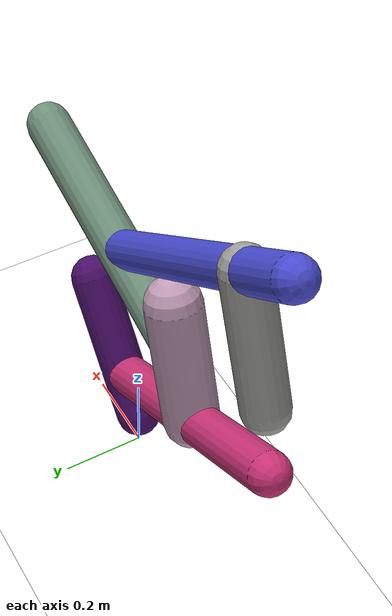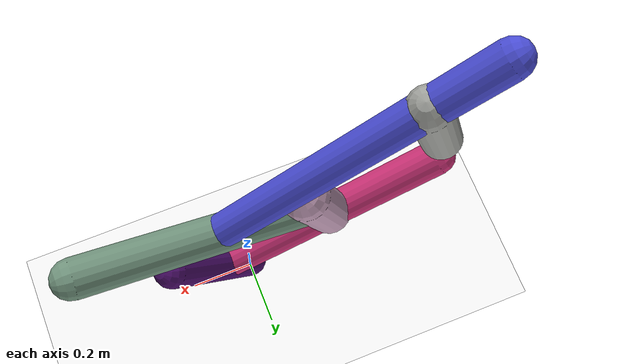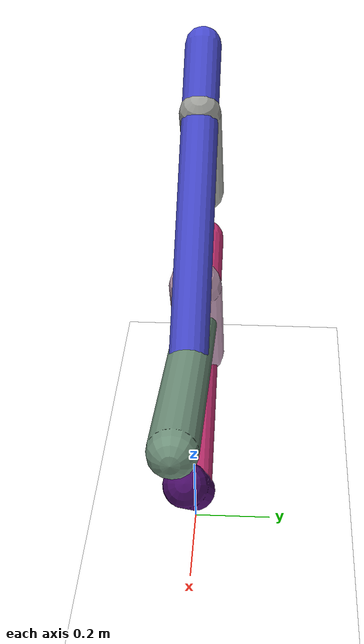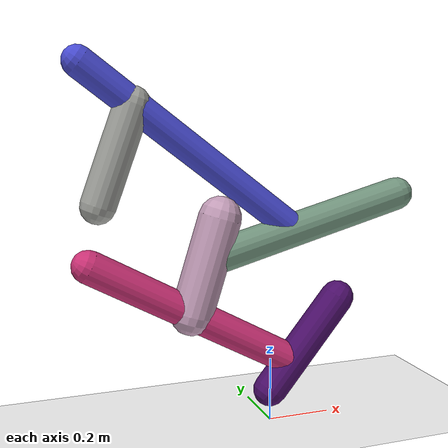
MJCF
<mujoco model="morphology">
  <option timestep="0.01"/>
  <default>
    <default class="/"/>
    <default class="0/"/>
    <default class="0/1/"/>
    <default class="0/1/2/"/>
    <default class="0/1/2/3/"/>
    <default class="0/1/2/3/4/"/>
    <default class="0/1/2/3/4/5/"/>
  </default>
  <asset>
    <texture name="texplane" type="2d" builtin="checker" rgb1="0.10000000000000001 0.20000000000000001 0.29999999999999999" rgb2="0.20000000000000001 0.29999999999999999 0.40000000000000002" width="300" height="300"/>
    <material name="MatPlane" class="/" texture="texplane" texrepeat="20 20" specular="1" shininess="1" reflectance="0.5"/>
  </asset>
  <worldbody>
    <light name="//unnamed_light_0" class="/" directional="true" pos="0 0 1.5" dir="0 0 -1.3" cutoff="100" exponent="1" diffuse="1 1 1" specular="0.10000000000000001 0.10000000000000001 0.10000000000000001"/>
    <geom name="ground" class="/" type="plane" size="15 15 0.5" material="MatPlane" rgba="1 1 1 1"/>
    <site name="body" class="/" size="9.9999999999999995e-07 9.9999999999999995e-07 9.9999999999999995e-07" pos="0 0 0.10000000000000001"/>
    <body pos="0 0 0.10000000000000001" name="0/">
      <joint name="0/rootx/" class="/" type="slide" axis="1 0 0" limited="false" stiffness="0" armature="0" damping="0"/>
      <joint name="0/rootz/" class="/" type="slide" axis="0 0 1" limited="false" stiffness="0" armature="0" damping="0"/>
      <joint name="0/rooty/" class="/" type="hinge" axis="0 1 0" limited="false" stiffness="0" armature="0" damping="0"/>
      <geom name="0/geom" class="0/" type="capsule" contype="1" conaffinity="1" condim="3" size="0.053338733524372517" rgba="0.29982447582596472 0.058119135047237647 0.42059282790765296 1" friction="0.59999999999999998 0.10000000000000001 0.10000000000000001" fromto="0 0 0 0.22907387022674119 0 0.28015321834631912"/>
      <site name="0/end0" class="0/" size="0.0050000000000000001" pos="0.22907387022674119 0 0.28015321834631912"/>
      <site name="0/attach1" class="0/" size="9.9999999999999995e-07 9.9999999999999995e-07 9.9999999999999995e-07" pos="0.072550829113842932 0 0.08872835758097837"/>
      <body pos="0.072550829113842932 0 0.08872835758097837" name="0/1/">
        <joint name="0/1/joint/" class="0/" type="hinge" axis="0 1 0" limited="true" range="-56.068738666627077 56.068738666627077"/>
        <geom name="0/1/geom" class="0/1/" type="capsule" contype="1" conaffinity="1" condim="3" size="0.049179513887112877" rgba="0.80705470807550506 0.1973522548787694 0.46851106761131489 1" friction="0.59999999999999998 0.10000000000000001 0.10000000000000001" fromto="0 0 0 -0.62816182785822106 0 0.34830786066421116"/>
        <site name="0/1/end1" class="0/1/" size="0.0050000000000000001" pos="-0.62816182785822106 0 0.34830786066421116"/>
        <site name="0/1/attach2" class="0/1/" size="9.9999999999999995e-07 9.9999999999999995e-07 9.9999999999999995e-07" pos="-0.32624844633030242 0 0.18090067455034572"/>
        <body pos="-0.32624844633030242 0 0.18090067455034572" name="0/1/2/">
          <joint name="0/1/2/joint/" class="0/1/" type="hinge" axis="0 1 0" limited="true" range="-43.494065128463703 43.494065128463703"/>
          <geom name="0/1/2/geom" class="0/1/2/" type="capsule" contype="1" conaffinity="1" condim="3" size="0.064986739377380573" rgba="0.76904493815047004 0.6208257710112649 0.72679211779487896 1" friction="0.59999999999999998 0.10000000000000001 0.10000000000000001" fromto="0 0 0 0.09131210602310702 0 0.28779986099303478"/>
          <site name="0/1/2/end2" class="0/1/2/" size="0.0050000000000000001" pos="0.09131210602310702 0 0.28779986099303478"/>
          <site name="0/1/2/attach3" class="0/1/2/" size="9.9999999999999995e-07 9.9999999999999995e-07 9.9999999999999995e-07" pos="0.051223553396244285 0 0.16144772242223637"/>
          <body pos="0.051223553396244285 0 0.16144772242223637" name="0/1/2/3/">
            <joint name="0/1/2/3/joint/" class="0/1/2/" type="hinge" axis="0 1 0" limited="true" range="-49.562654205123408 49.562654205123408"/>
            <geom name="0/1/2/3/geom" class="0/1/2/3/" type="capsule" contype="1" conaffinity="1" condim="3" size="0.052147785290528978" rgba="0.44369529115555861 0.57738066886631112 0.4901231590887748 1" friction="0.59999999999999998 0.10000000000000001 0.10000000000000001" fromto="0 0 0 0.63637912346843684 0 0.17377254402191733"/>
            <site name="0/1/2/3/end3" class="0/1/2/3/" size="0.0050000000000000001" pos="0.63637912346843684 0 0.17377254402191733"/>
            <site name="0/1/2/3/attach4" class="0/1/2/3/" size="9.9999999999999995e-07 9.9999999999999995e-07 9.9999999999999995e-07" pos="0.28114562982576291 0 0.07677088944903171"/>
            <body pos="0.28114562982576291 0 0.07677088944903171" name="0/1/2/3/4/">
              <joint name="0/1/2/3/4/joint/" class="0/1/2/3/" type="hinge" axis="0 1 0" limited="true" range="-45.792938687084842 45.792938687084842"/>
              <geom name="0/1/2/3/4/geom" class="0/1/2/3/4/" type="capsule" contype="1" conaffinity="1" condim="3" size="0.045363698717817404" rgba="0.28860349572137378 0.30238759254641545 0.83263258825524689 1" friction="0.59999999999999998 0.10000000000000001 0.10000000000000001" fromto="0 0 0 -0.64247436192922724 0 0.49732440428977998"/>
              <site name="0/1/2/3/4/end4" class="0/1/2/3/4/" size="0.0050000000000000001" pos="-0.64247436192922724 0 0.49732440428977998"/>
              <site name="0/1/2/3/4/attach5" class="0/1/2/3/4/" size="9.9999999999999995e-07 9.9999999999999995e-07 9.9999999999999995e-07" pos="-0.4955807235860506 0 0.38361746824393966"/>
              <body pos="-0.4955807235860506 0 0.38361746824393966" name="0/1/2/3/4/5/">
                <joint name="0/1/2/3/4/5/joint/" class="0/1/2/3/4/" type="hinge" axis="0 1 0" limited="true" range="-54.251402837347982 54.251402837347982"/>
                <geom name="0/1/2/3/4/5/geom" class="0/1/2/3/4/5/" type="capsule" contype="1" conaffinity="1" condim="3" size="0.051894958744218511" rgba="0.6292369677718147 0.63499677982065938 0.61499280755074293 1" friction="0.59999999999999998 0.10000000000000001 0.10000000000000001" fromto="0 0 0 -0.10579712993481916 0 -0.28372107366103877"/>
                <site name="0/1/2/3/4/5/end5" class="0/1/2/3/4/5/" size="0.0050000000000000001" pos="-0.10579712993481916 0 -0.28372107366103877"/>
              </body>
            </body>
          </body>
        </body>
      </body>
      <camera name="0/side" class="0/" mode="trackcom" pos="0.40000000000000002 -4 0.20000000000000001" quat="0.70699999999999996 0.70699999999999996 0 0"/>
    </body>
  </worldbody>
  <actuator>
    <motor name="0/1/motor" class="0/1/" ctrllimited="true" ctrlrange="-1 1" gear="61" joint="0/1/joint/"/>
    <motor name="0/1/2/motor" class="0/1/2/" ctrllimited="true" ctrlrange="-1 1" gear="69" joint="0/1/2/joint/"/>
    <motor name="0/1/2/3/motor" class="0/1/2/3/" ctrllimited="true" ctrlrange="-1 1" gear="79" joint="0/1/2/3/joint/"/>
    <motor name="0/1/2/3/4/motor" class="0/1/2/3/4/" ctrllimited="true" ctrlrange="-1 1" gear="52" joint="0/1/2/3/4/joint/"/>
    <motor name="0/1/2/3/4/5/motor" class="0/1/2/3/4/5/" ctrllimited="true" ctrlrange="-1 1" gear="62" joint="0/1/2/3/4/5/joint/"/>
  </actuator>
  <sensor>
    <subtreelinvel name="velocity" body="0/"/>
  </sensor>
</mujoco>
